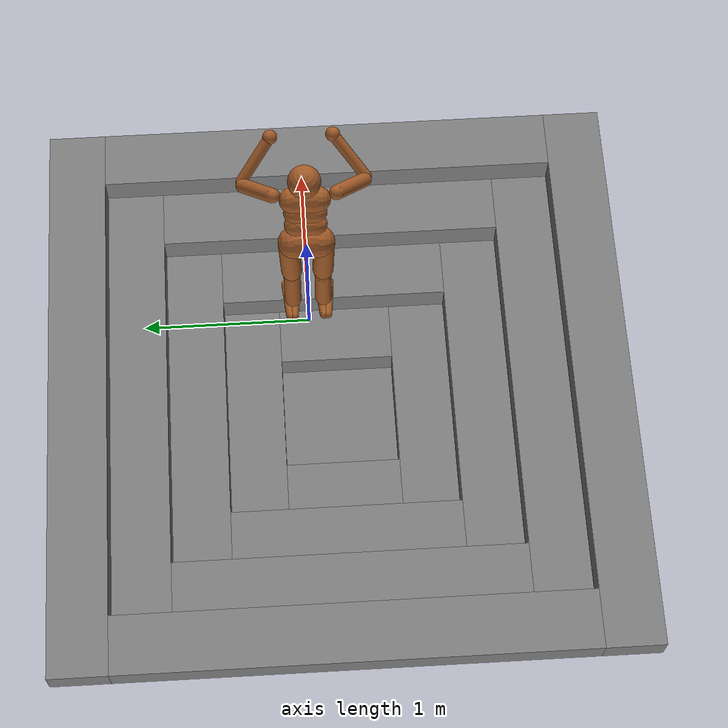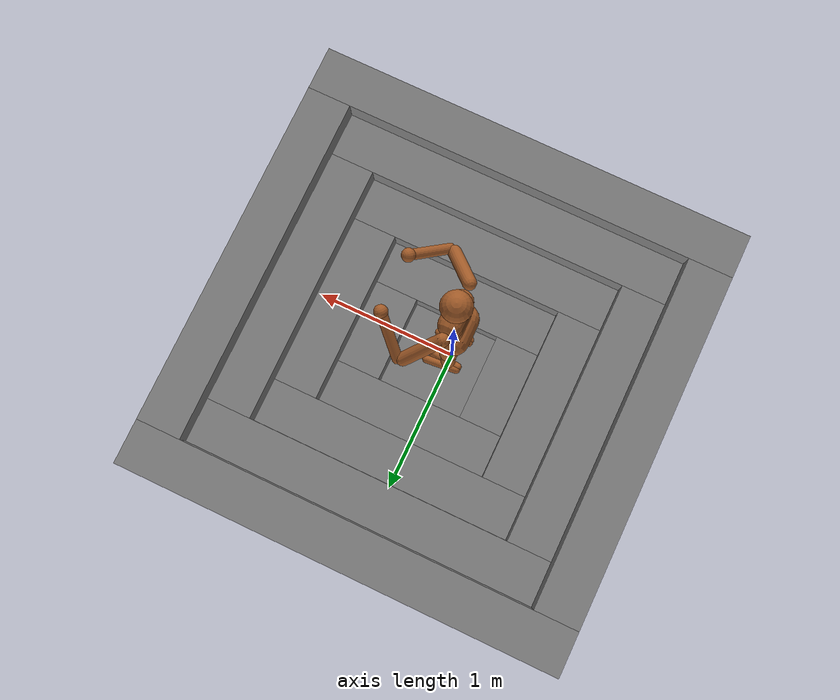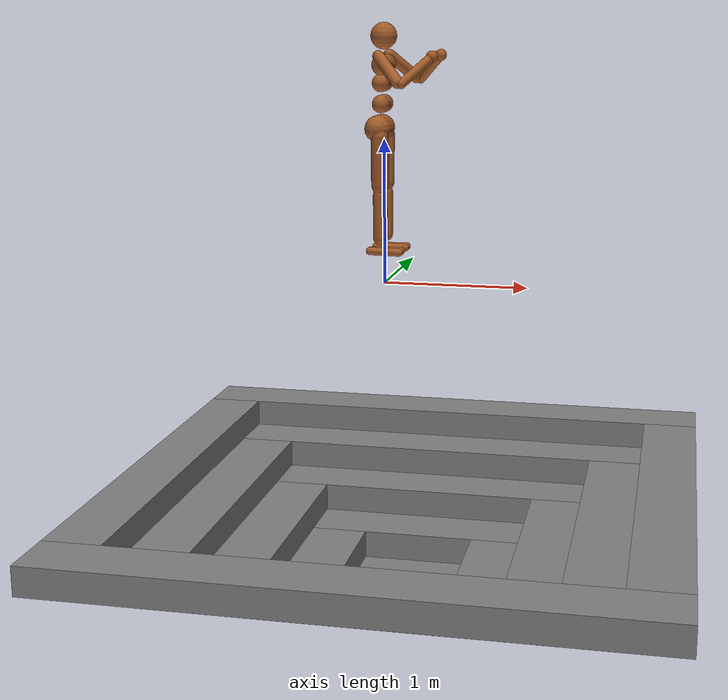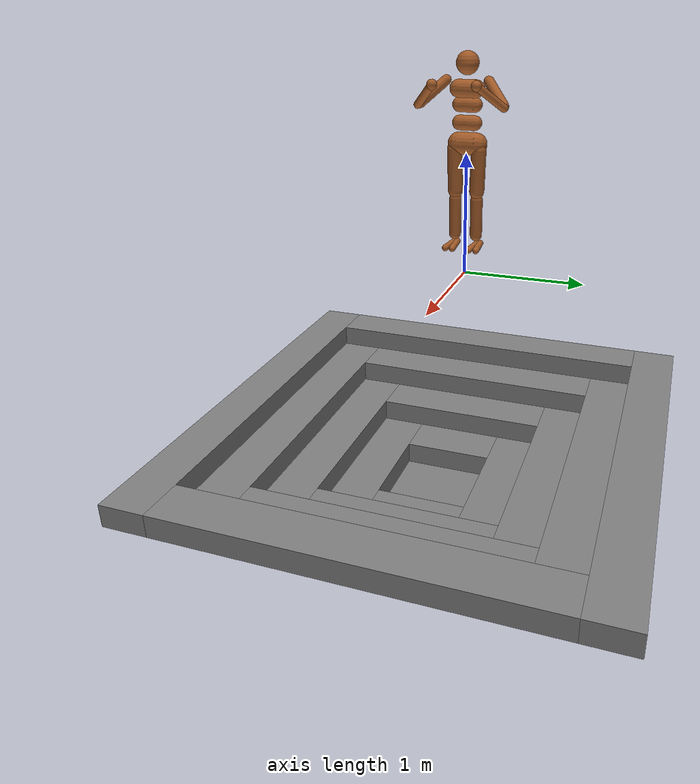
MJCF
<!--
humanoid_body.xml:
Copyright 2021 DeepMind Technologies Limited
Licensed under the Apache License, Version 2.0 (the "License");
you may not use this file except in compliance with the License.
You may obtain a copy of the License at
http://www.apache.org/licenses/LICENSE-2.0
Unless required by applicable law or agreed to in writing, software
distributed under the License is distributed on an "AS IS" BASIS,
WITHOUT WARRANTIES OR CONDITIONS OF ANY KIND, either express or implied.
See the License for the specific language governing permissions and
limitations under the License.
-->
<mujoco model="Humanoid and 100 objects">
<!-- Degree of Freedom: 627
     Actuators: 21

     Humanoid and 100 free primitive objects.
-->
  <include file="humanoid_body.xml"/>

  <option timestep="0.005"/>

  <size memory="100M"/>

  <default>
    <geom solimp=".9 .9 .01"/>
    <default class="capsule">
      <geom type="capsule" material="capsule" size="0.1 0.05"/>
    </default>
    <default class="ellipsoid">
      <geom type="ellipsoid" material="ellipsoid" size="0.15 0.1 0.07"/>
    </default>
    <default class="box">
      <geom type="box" material="box" size="0.15 0.1 0.05"/>
    </default>
    <default class="cylinder">
      <geom type="cylinder" material="cylinder" size="0.1 0.05" condim="4" friction="1 .01 .01"/>
    </default>
    <default class="sphere">
      <geom type="sphere" material="sphere" size="0.1"/>
    </default>
    <default class="border">
      <geom type="capsule" size="0.4" rgba=".4 .4 .4 1"/>
    </default>
    <default class="borderpost">
      <geom type="box" size="0.41 0.41 0.41" rgba=".55 .55 .55 1"/>
    </default>
  </default>

  <asset>
    <texture type="skybox" builtin="gradient" width="512" height="512" rgb1=".4 .6 .8" rgb2="0 0 0"/>
    <texture name="texgeom" type="cube" builtin="flat" mark="cross" width="128" height="128"
             rgb1="0.6 0.6 0.6" rgb2="0.6 0.6 0.6" markrgb="1 1 1"/>
    <texture name="texplane" type="2d" builtin="checker" rgb1=".4 .4 .4" rgb2=".6 .6 .6"
             width="512" height="512"/>
    <material name="MatPlane" reflectance="0.3" texture="texplane" texrepeat="1 1" texuniform="true"
              rgba=".7 .7 .7 1"/>
    <material name="capsule" texture="texgeom" texuniform="true" rgba=".4 .9 .6 1" />
    <material name="ellipsoid" texture="texgeom" texuniform="true" rgba=".4 .6 .9 1" />
    <material name="box" texture="texgeom" texuniform="true" rgba=".4 .9 .9 1" />
    <material name="cylinder" texture="texgeom" texuniform="true" rgba=".8 .6 .8 1" />
    <material name="sphere" texture="texgeom" texuniform="true" rgba=".9 .1 .1 1" />
  </asset>

  <visual>
    <quality shadowsize="4096" offsamples="8"/>
    <map znear="0.1" force="0.05"/>
  </visual>

  <statistic extent="4"/>

  <worldbody>
    <light directional="true" diffuse=".8 .8 .8" pos="0 0 10" dir="0 0 -10"/>
    <geom name="floor" type="plane" pos = "0 0 -20" size="3 3 .5" material="MatPlane"/>
     <geom type="box" pos="0.200000 1.600000 -1.450000" size="2.000000 0.200000 0.100000" rgba="0.5 0.5 0.5 1" />
    <geom type="box" pos="0.200000 -2.000000 -1.450000" size="2.000000 0.200000 0.100000" rgba="0.5 0.5 0.5 1" />
    <geom type="box" pos="2.000000 -0.200000 -1.450000" size="0.200000 1.600000 0.100000" rgba="0.5 0.5 0.5 1" />
    <geom type="box" pos="-1.600000 -0.200000 -1.450000" size="0.200000 1.600000 0.100000" rgba="0.5 0.5 0.5 1" />
    <geom type="box" pos="0.200000 1.200000 -1.650000" size="1.600000 0.200000 0.100000" rgba="0.5 0.5 0.5 1" />
    <geom type="box" pos="0.200000 -1.600000 -1.650000" size="1.600000 0.200000 0.100000" rgba="0.5 0.5 0.5 1" />
    <geom type="box" pos="1.600000 -0.200000 -1.650000" size="0.200000 1.200000 0.100000" rgba="0.5 0.5 0.5 1" />
    <geom type="box" pos="-1.200000 -0.200000 -1.650000" size="0.200000 1.200000 0.100000" rgba="0.5 0.5 0.5 1" />
    <geom type="box" pos="0.200000 0.800000 -1.850000" size="1.200000 0.200000 0.100000" rgba="0.5 0.5 0.5 1" />
    <geom type="box" pos="0.200000 -1.200000 -1.850000" size="1.200000 0.200000 0.100000" rgba="0.5 0.5 0.5 1" />
    <geom type="box" pos="1.200000 -0.200000 -1.850000" size="0.200000 0.800000 0.100000" rgba="0.5 0.5 0.5 1" />
    <geom type="box" pos="-0.800000 -0.200000 -1.850000" size="0.200000 0.800000 0.100000" rgba="0.5 0.5 0.5 1" />
    <geom type="box" pos="0.200000 0.400000 -2.050000" size="0.800000 0.200000 0.100000" rgba="0.5 0.5 0.5 1" />
    <geom type="box" pos="0.200000 -0.800000 -2.050000" size="0.800000 0.200000 0.100000" rgba="0.5 0.5 0.5 1" />
    <geom type="box" pos="0.800000 -0.200000 -2.050000" size="0.200000 0.400000 0.100000" rgba="0.5 0.5 0.5 1" />
    <geom type="box" pos="-0.400000 -0.200000 -2.050000" size="0.200000 0.400000 0.100000" rgba="0.5 0.5 0.5 1" />
    <geom type="box" pos="0.200000 -0.200000 -2.250000" size="0.400000 0.400000 0.100000" rgba="0.5 0.5 0.5 1" />

  </worldbody>
</mujoco>

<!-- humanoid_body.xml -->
<mujoco model="Humanoid body">

  <asset>
    <texture type="skybox" builtin="gradient" rgb1=".3 .5 .7" rgb2="0 0 0" width="512" height="512"/>
    <texture name="body" type="cube" builtin="flat" mark="cross" width="127" height="1278"
             rgb1="0.8 0.6 0.4" rgb2="0.8 0.6 0.4" markrgb="1 1 1" random="0.01"/>
    <material name="body" texture="body" texuniform="true" rgba="0.8 0.6 .4 1"/>
    <texture name="grid" type="2d" builtin="checker" width="512" height="512" rgb1=".1 .2 .3" rgb2=".2 .3 .4"/>
    <material name="grid" texture="grid" texrepeat="1 1" texuniform="true" reflectance=".2"/>
  </asset>

  <default>
    <motor ctrlrange="-1 1" ctrllimited="true"/>
    <default class="body">
      <geom type="capsule" condim="1" friction=".7" solimp=".9 .99 .003" solref=".015 1" material="body"/>
      <joint type="hinge" damping=".2" stiffness="1" armature=".01" limited="true" solimplimit="0 .99 .01"/>
      <default class="big_joint">
        <joint damping="5" stiffness="10"/>
        <default class="big_stiff_joint">
          <joint stiffness="20"/>
        </default>
      </default>
    </default>
  </default>

  <visual>
    <map force="0.1" zfar="30"/>
    <rgba haze="0.15 0.25 0.35 1"/>
    <quality shadowsize="4096"/>
    <global offwidth="800" offheight="800"/>
  </visual>

  <worldbody>
    <body name="torso" pos="0 0 1.5" childclass="body">
      <light name="top" pos="0 0 2" mode="trackcom"/>
      <camera name="back" pos="-3 0 1" xyaxes="0 -1 0 1 0 2" mode="trackcom"/>
      <camera name="side" pos="0 -3 1" xyaxes="1 0 0 0 1 2" mode="trackcom"/>
      <freejoint name="root"/>
      <geom name="torso" fromto="0 -.07 0 0 .07 0" size=".07"/>
      <geom name="upper_waist" fromto="-.01 -.06 -.12 -.01 .06 -.12" size=".06"/>
      <body name="head" pos="0 0 .19">
        <geom name="head" type="sphere" size=".09"/>
        <camera name="egocentric" pos=".09 0 0" xyaxes="0 -1 0 .1 0 1" fovy="80"/>
      </body>
      <body name="lower_waist" pos="-.01 0 -.26">
        <geom name="lower_waist" fromto="0 -.06 0 0 .06 0" size=".06"/>
        <joint name="abdomen_z" pos="0 0 .065" axis="0 0 1" range="-45 45" class="big_stiff_joint"/>
        <joint name="abdomen_y" pos="0 0 .065" axis="0 1 0" range="-75 30" class="big_joint"/>
        <body name="pelvis" pos="0 0 -.165">
          <joint name="abdomen_x" pos="0 0 .1" axis="1 0 0" range="-35 35" class="big_joint"/>
          <geom name="butt" fromto="-.02 -.07 0 -.02 .07 0" size=".09"/>
          <body name="right_thigh" pos="0 -.1 -.04">
            <joint name="right_hip_x" axis="1 0 0" range="-25 5" class="big_joint"/>
            <joint name="right_hip_z" axis="0 0 1" range="-60 35" class="big_joint"/>
            <joint name="right_hip_y" axis="0 1 0" range="-110 20" class="big_stiff_joint"/>
            <geom name="right_thigh" fromto="0 0 0 0 .01 -.34" size=".06"/>
            <body name="right_shin" pos="0 .01 -.403">
              <joint name="right_knee" pos="0 0 .02" axis="0 -1 0" range="-160 2"/>
              <geom name="right_shin" fromto="0 0 0 0 0 -.3"  size=".049"/>
              <body name="right_foot" pos="0 0 -.39">
                <joint name="right_ankle_y" pos="0 0 .08" axis="0 1 0" range="-50 50" stiffness="6"/>
                <joint name="right_ankle_x" pos="0 0 .04" axis="1 0 .5" range="-50 50" stiffness="3"/>
                <geom name="right_right_foot" fromto="-.07 -.02 0 .14 -.04 0" size=".027"/>
                <geom name="left_right_foot" fromto="-.07 0 0 .14  .02 0" size=".027"/>
              </body>
            </body>
          </body>
          <body name="left_thigh" pos="0 .1 -.04">
            <joint name="left_hip_x" axis="-1 0 0" range="-25 5" class="big_joint"/>
            <joint name="left_hip_z" axis="0 0 -1" range="-60 35" class="big_joint"/>
            <joint name="left_hip_y" axis="0 1 0" range="-110 20" class="big_stiff_joint"/>
            <geom name="left_thigh" fromto="0 0 0 0 -.01 -.34" size=".06"/>
            <body name="left_shin" pos="0 -.01 -.403">
              <joint name="left_knee" pos="0 0 .02" axis="0 -1 0" range="-160 2"/>
              <geom name="left_shin" fromto="0 0 0 0 0 -.3"  size=".049"/>
              <body name="left_foot" pos="0 0 -.39">
                <joint name="left_ankle_y" pos="0 0 .08" axis="0 1 0" range="-50 50" stiffness="6"/>
                <joint name="left_ankle_x" pos="0 0 .04" axis="1 0 .5" range="-50 50" stiffness="3"/>
                <geom name="left_left_foot" fromto="-.07 .02 0 .14 .04 0" size=".027"/>
                <geom name="right_left_foot" fromto="-.07 0 0 .14 -.02 0" size=".027"/>
              </body>
            </body>
          </body>
        </body>
      </body>
      <body name="right_upper_arm" pos="0 -.17 .06">
        <joint name="right_shoulder1" axis="2 1 1"  range="-85 60"/>
        <joint name="right_shoulder2" axis="0 -1 1" range="-85 60"/>
        <geom name="right_upper_arm" fromto="0 0 0 .16 -.16 -.16" size=".04 .16"/>
        <body name="right_lower_arm" pos=".18 -.18 -.18">
          <joint name="right_elbow" axis="0 -1 1" range="-90 50" stiffness="0"/>
          <geom name="right_lower_arm" fromto=".01 .01 .01 .17 .17 .17" size=".031"/>
          <body name="right_hand" pos=".18 .18 .18">
            <geom name="right_hand" type="sphere" size=".04" zaxis="1 1 1"/>
          </body>
        </body>
      </body>
      <body name="left_upper_arm" pos="0 .17 .06">
        <joint name="left_shoulder1" axis="2 -1 1" range="-60 85"/>
        <joint name="left_shoulder2" axis="0 1 1"  range="-60 85"/>
        <geom name="left_upper_arm" fromto="0 0 0 .16 .16 -.16" size=".04 .16"/>
        <body name="left_lower_arm" pos=".18 .18 -.18">
          <joint name="left_elbow" axis="0 -1 -1" range="-90 50" stiffness="0"/>
          <geom name="left_lower_arm" fromto=".01 -.01 .01 .17 -.17 .17" size=".031"/>
          <body name="left_hand" pos=".18 -.18 .18">
            <geom name="left_hand" type="sphere" size=".04" zaxis="1 -1 1"/>
          </body>
        </body>
      </body>
    </body>
  </worldbody>

  <actuator>
    <motor name="abdomen_y"       gear="40"  joint="abdomen_y"/>
    <motor name="abdomen_z"       gear="40"  joint="abdomen_z"/>
    <motor name="abdomen_x"       gear="40"  joint="abdomen_x"/>
    <motor name="right_hip_x"     gear="40"  joint="right_hip_x"/>
    <motor name="right_hip_z"     gear="40"  joint="right_hip_z"/>
    <motor name="right_hip_y"     gear="120" joint="right_hip_y"/>
    <motor name="right_knee"      gear="80"  joint="right_knee"/>
    <motor name="right_ankle_x"   gear="20"  joint="right_ankle_x"/>
    <motor name="right_ankle_y"   gear="20"  joint="right_ankle_y"/>
    <motor name="left_hip_x"      gear="40"  joint="left_hip_x"/>
    <motor name="left_hip_z"      gear="40"  joint="left_hip_z"/>
    <motor name="left_hip_y"      gear="120" joint="left_hip_y"/>
    <motor name="left_knee"       gear="80"  joint="left_knee"/>
    <motor name="left_ankle_x"    gear="20"  joint="left_ankle_x"/>
    <motor name="left_ankle_y"    gear="20"  joint="left_ankle_y"/>
    <motor name="right_shoulder1" gear="20"  joint="right_shoulder1"/>
    <motor name="right_shoulder2" gear="20"  joint="right_shoulder2"/>
    <motor name="right_elbow"     gear="40"  joint="right_elbow"/>
    <motor name="left_shoulder1"  gear="20"  joint="left_shoulder1"/>
    <motor name="left_shoulder2"  gear="20"  joint="left_shoulder2"/>
    <motor name="left_elbow"      gear="40"  joint="left_elbow"/>
  </actuator>
</mujoco>
